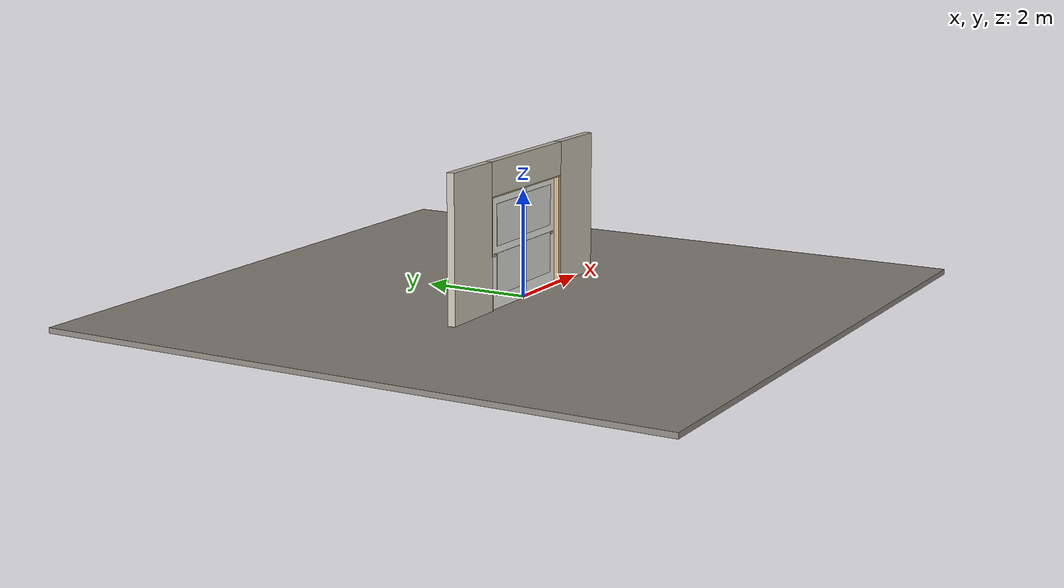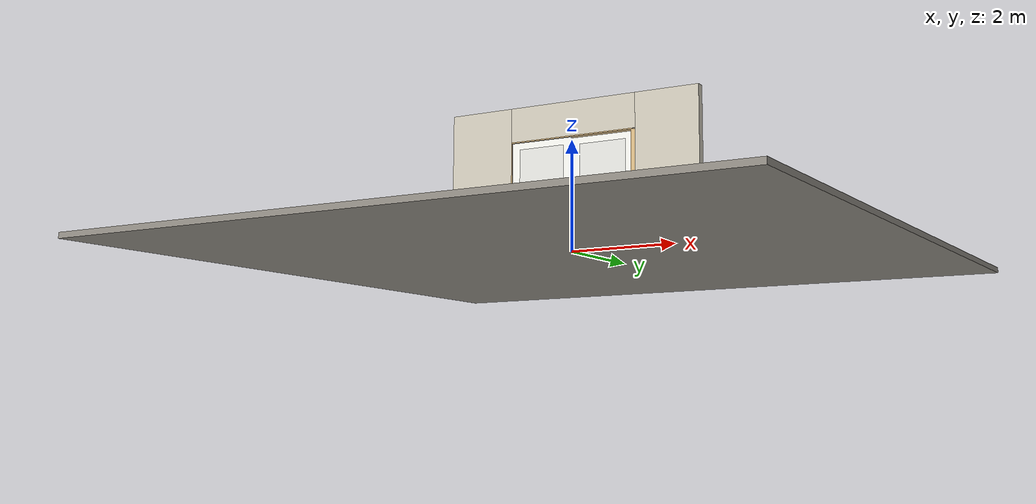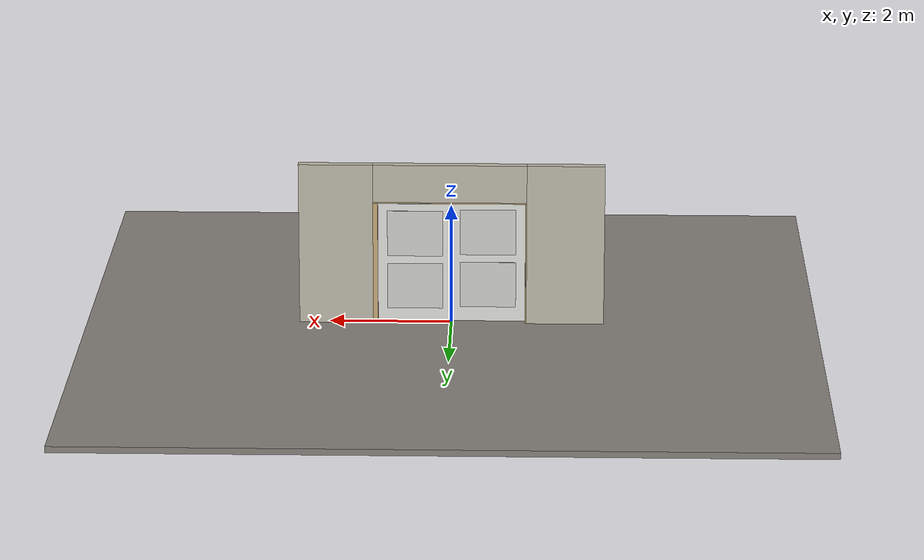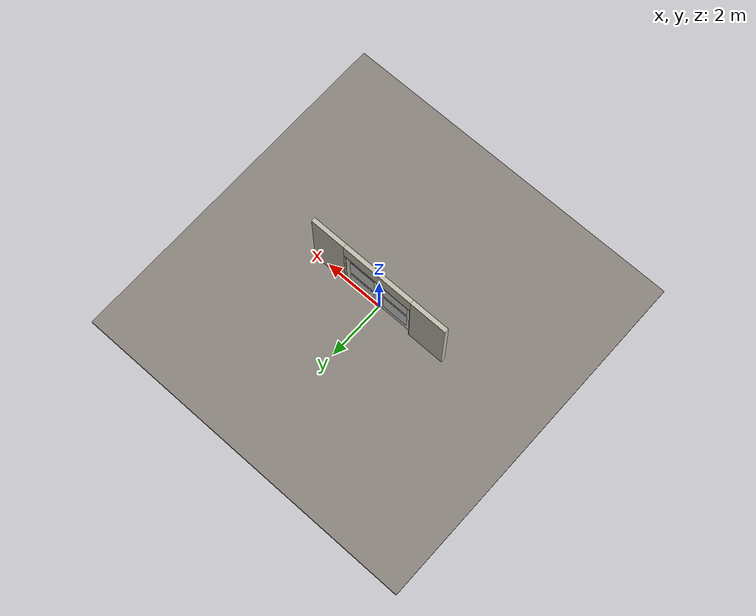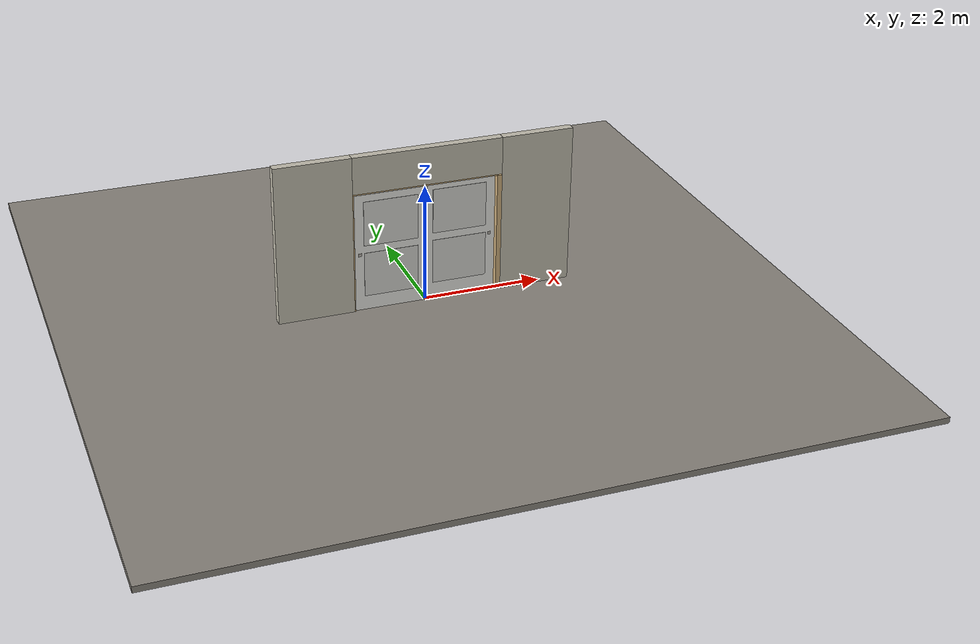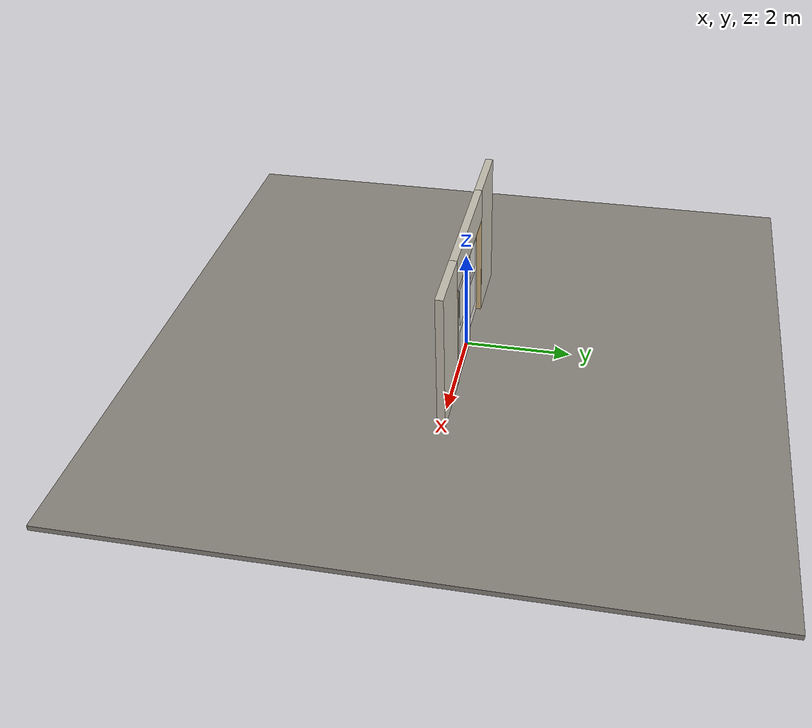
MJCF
<?xml version="1.0" ?>
<mujoco model="db0499_sliding_bypass_simple">
  <compiler angle="radian" meshdir="../../hardware" texturedir="../../textures" autolimits="true" inertiafromgeom="false"/>
  <option timestep="0.002" integrator="implicitfast" cone="elliptic" impratio="10" noslip_iterations="3">
    <flag multiccd="enable"/>
  </option>
  <size memory="16M"/>
  <default>
    <geom condim="4" solref="0.005 1" solimp="0.95 0.99 0.001"/>
    <joint solreflimit="0.005 1" solimplimit="0.95 0.99 0.001"/>
    <tendon solreflimit="0.005 1"/>
    <equality solref="0.002 1"/>
  </default>
  <visual>
    <headlight ambient="0.4 0.4 0.4" diffuse="0.7 0.7 0.7" specular="0.2 0.2 0.2"/>
    <quality shadowsize="4096"/>
    <map znear="0.01" zfar="60"/>
  </visual>
  <asset>
    <material name="mat_floor" rgba="0.55 0.53 0.5 1" specular="0.2" shininess="0.15" reflectance="0"/>
    <material name="mat_wall" rgba="0.78 0.76 0.7 1" specular="0.2" shininess="0.1" reflectance="0"/>
    <material name="mat_frame" rgba="0.82 0.7 0.5 1" specular="0.2" shininess="0.45" reflectance="0"/>
    <material name="mat_track" rgba="0.8 0.81 0.83 1" specular="0.8" shininess="0.6" reflectance="0.4"/>
    <material name="mat_leaf_0" rgba="0.93 0.93 0.91 1" specular="0.2" shininess="0.34" reflectance="0"/>
    <material name="mat_leaf_0_panel" rgba="0.856 0.856 0.837 1" specular="0.2" shininess="0.34" reflectance="0"/>
    <material name="mat_roller" rgba="0.65 0.66 0.68 1" specular="0.74" shininess="0.5" reflectance="0.36"/>
    <material name="mat_op_nickel_satin" rgba="0.72 0.7 0.66 1" specular="0.8" shininess="0.65" reflectance="0.4"/>
    <material name="mat_leaf_1" rgba="0.93 0.93 0.91 1" specular="0.2" shininess="0.34" reflectance="0"/>
    <material name="mat_leaf_1_panel" rgba="0.856 0.856 0.837 1" specular="0.2" shininess="0.34" reflectance="0"/>
    <material name="mat_hook" rgba="0.75 0.76 0.77 1" specular="0.8" shininess="0.65" reflectance="0.4"/>
    <texture name="skybox" type="skybox" builtin="gradient" rgb1="0.6 0.7 0.85" rgb2="0.9 0.92 0.95" width="256" height="256"/>
  </asset>
  <worldbody>
    <light name="sun" pos="1.5 -2.5 4" dir="-0.3 0.5 -0.8" directional="true" diffuse="0.8 0.8 0.8" specular="0.3 0.3 0.3" castshadow="true"/>
    <light name="fill" pos="-1.5 2.5 3" dir="0.3 -0.5 -0.7" directional="true" diffuse="0.35 0.35 0.4" castshadow="false"/>
    <camera name="robot_view" pos="0 -2.891875 1.835725" xyaxes="1 0 0 0 0.26963 0.962964" fovy="52"/>
    <camera name="far_view" pos="0 2.891875 1.835725" xyaxes="-1 0 0 0 -0.26963 0.962964" fovy="52"/>
    <camera name="iso" pos="2.197825 -2.429175 2.298425" xyaxes="0.741536 0.670913 0 -0.242917 0.268487 0.932151" fovy="46"/>
    <camera name="detail_handle" pos="-0.936 -0.86 1.28" xyaxes="0.97561 0.219512 0 -0.070934 0.315262 0.94635" fovy="38"/>
    <geom name="floor" type="box" size="6 6 0.05" pos="0 0 -0.05" material="mat_floor" group="0" contype="1" conaffinity="1" friction="0.8 0.005 0.0001" density="2400"/>
    <geom name="wall_left" type="box" size="0.636 0.0725 1.35" pos="-1.864 0 1.35" material="mat_wall" group="0" contype="1" conaffinity="1" friction="0.6 0.005 0.0001" density="800"/>
    <geom name="wall_right" type="box" size="0.606 0.0725 1.35" pos="1.894 0 1.35" material="mat_wall" group="0" contype="1" conaffinity="1" friction="0.6 0.005 0.0001" density="800"/>
    <geom name="wall_header" type="box" size="1.258 0.0725 0.3145" pos="0.03 0 2.3855" material="mat_wall" group="0" contype="1" conaffinity="1" friction="0.6 0.005 0.0001" density="800"/>
    <geom name="jamb_l" type="box" size="0.0095 0.0725 1.026" pos="-1.2185 0 1.026" material="mat_frame" group="0" contype="1" conaffinity="1" friction="0.6 0.005 0.0001" density="300"/>
    <geom name="jamb_head" type="box" size="1.228 0.0725 0.0095" pos="0 0 2.0615" material="mat_frame" group="0" contype="1" conaffinity="1" friction="0.6 0.005 0.0001" density="300"/>
    <geom name="leaf_0_track_header" type="box" size="1.254 0.025 0.04" pos="-0.002 -0.0425 2.111" material="mat_track" group="0" contype="1" conaffinity="1" friction="0.6 0.005 0.0001" density="2700"/>
    <geom name="leaf_1_track_header" type="box" size="1.254 0.025 0.04" pos="0.002 0.0425 2.111" material="mat_track" group="0" contype="1" conaffinity="1" friction="0.6 0.005 0.0001" density="2700"/>
    <geom name="jamb_latch_0" type="box" size="0.0395 0.0725 1.026" pos="1.2485 0 1.026" material="mat_frame" group="0" contype="1" conaffinity="1" friction="0.6 0.005 0.0001" density="300"/>
    <site name="approach_point" pos="0 -1.5 0" quat="1 0 0 0" size="0.05" rgba="0.2 0.9 0.2 0.5" group="4"/>
    <site name="goal_point" pos="0 1.5 0" quat="1 0 0 0" size="0.05" rgba="0.2 0.9 0.2 0.5" group="4"/>
    <site name="door_plane_center" pos="0 0 1.026" quat="1 0 0 0" size="0.02" rgba="0.2 0.9 0.2 0.5" group="4"/>
    <body name="leaf_0" pos="-0.5965 -0.0425 0">
      <inertial pos="-0.000076 -0.000003 1.028046" mass="20.635688" quat="0.500005 -0.5 -0.5 -0.499995" diaginertia="2.55695514 7.100010771 9.652740656"/>
      <joint name="leaf_0_slide" type="slide" axis="1 0 0" limited="true" range="0 1.173" damping="3.033034" frictionloss="48.626913" armature="0.5"/>
      <geom name="leaf_0_slab" type="box" size="0.6095 0.0175 1.016" pos="0 0 1.028" material="mat_leaf_0" group="0" contype="1" conaffinity="1" friction="0.35 0.005 0.0001" density="1"/>
      <geom name="leaf_0_panel_0_n" type="box" size="0.45541 0.003 0.38422" pos="0 -0.0205 0.63974" material="mat_leaf_0_panel" group="1" contype="0" conaffinity="0" density="1"/>
      <geom name="leaf_0_panel_0_p" type="box" size="0.45541 0.003 0.38422" pos="0 0.0205 0.63974" material="mat_leaf_0_panel" group="1" contype="0" conaffinity="0" density="1"/>
      <geom name="leaf_0_panel_1_n" type="box" size="0.45541 0.003 0.38422" pos="0 -0.0205 1.53818" material="mat_leaf_0_panel" group="1" contype="0" conaffinity="0" density="1"/>
      <geom name="leaf_0_panel_1_p" type="box" size="0.45541 0.003 0.38422" pos="0 0.0205 1.53818" material="mat_leaf_0_panel" group="1" contype="0" conaffinity="0" density="1"/>
      <geom name="leaf_0_pull_n" type="box" size="0.0275 0.0005 0.0275" pos="-0.5195 -0.018 1" material="mat_op_nickel_satin" group="1" contype="0" conaffinity="0" density="1000"/>
      <site name="leaf_0_pull_grip_n" pos="-0.5195 -0.0175 1" quat="1 0 0 0" size="0.012" rgba="0.2 0.9 0.2 0.5" group="4"/>
      <site name="leaf_0_edge_mid" pos="-0.6095 0 1.028" quat="1 0 0 0" size="0.02" rgba="0.2 0.9 0.2 0.5" group="4"/>
    </body>
    <body name="leaf_1" pos="0.5965 0.0425 0">
      <inertial pos="0.000076 -0.000003 1.028046" mass="20.635688" quat="-0.499995 0.5 0.5 0.500005" diaginertia="2.55695514 7.100010771 9.652740656"/>
      <joint name="leaf_1_slide" type="slide" axis="-1 0 0" limited="true" range="0 1.173" damping="3.033034" frictionloss="48.626913" armature="0.5"/>
      <geom name="leaf_1_slab" type="box" size="0.6095 0.0175 1.016" pos="0 0 1.028" material="mat_leaf_1" group="0" contype="1" conaffinity="1" friction="0.35 0.005 0.0001" density="1"/>
      <geom name="leaf_1_panel_0_n" type="box" size="0.45541 0.003 0.38422" pos="0 -0.0205 0.63974" material="mat_leaf_1_panel" group="1" contype="0" conaffinity="0" density="1"/>
      <geom name="leaf_1_panel_0_p" type="box" size="0.45541 0.003 0.38422" pos="0 0.0205 0.63974" material="mat_leaf_1_panel" group="1" contype="0" conaffinity="0" density="1"/>
      <geom name="leaf_1_panel_1_n" type="box" size="0.45541 0.003 0.38422" pos="0 -0.0205 1.53818" material="mat_leaf_1_panel" group="1" contype="0" conaffinity="0" density="1"/>
      <geom name="leaf_1_panel_1_p" type="box" size="0.45541 0.003 0.38422" pos="0 0.0205 1.53818" material="mat_leaf_1_panel" group="1" contype="0" conaffinity="0" density="1"/>
      <geom name="leaf_1_pull_n" type="box" size="0.0275 0.0005 0.0275" pos="0.5195 -0.018 1" material="mat_op_nickel_satin" group="1" contype="0" conaffinity="0" density="1000"/>
      <site name="leaf_1_pull_grip_n" pos="0.5195 -0.0175 1" quat="1 0 0 0" size="0.012" rgba="0.2 0.9 0.2 0.5" group="4"/>
      <site name="leaf_1_edge_mid" pos="0.6095 0 1.028" quat="1 0 0 0" size="0.02" rgba="0.2 0.9 0.2 0.5" group="4"/>
    </body>
  </worldbody>
  <sensor>
    <jointpos name="leaf_0_slide_pos" joint="leaf_0_slide"/>
    <jointvel name="leaf_0_slide_vel" joint="leaf_0_slide"/>
    <jointpos name="leaf_1_slide_pos" joint="leaf_1_slide"/>
    <jointvel name="leaf_1_slide_vel" joint="leaf_1_slide"/>
  </sensor>
</mujoco>
